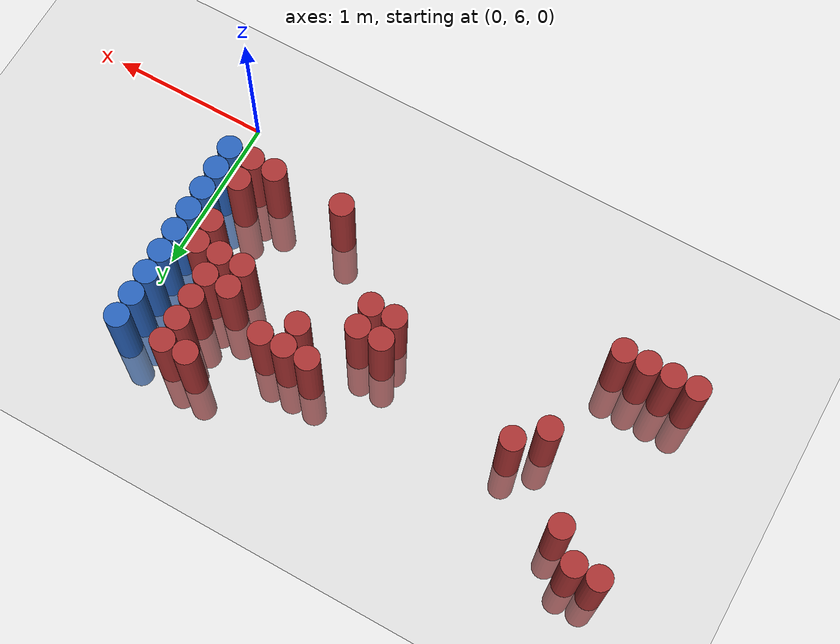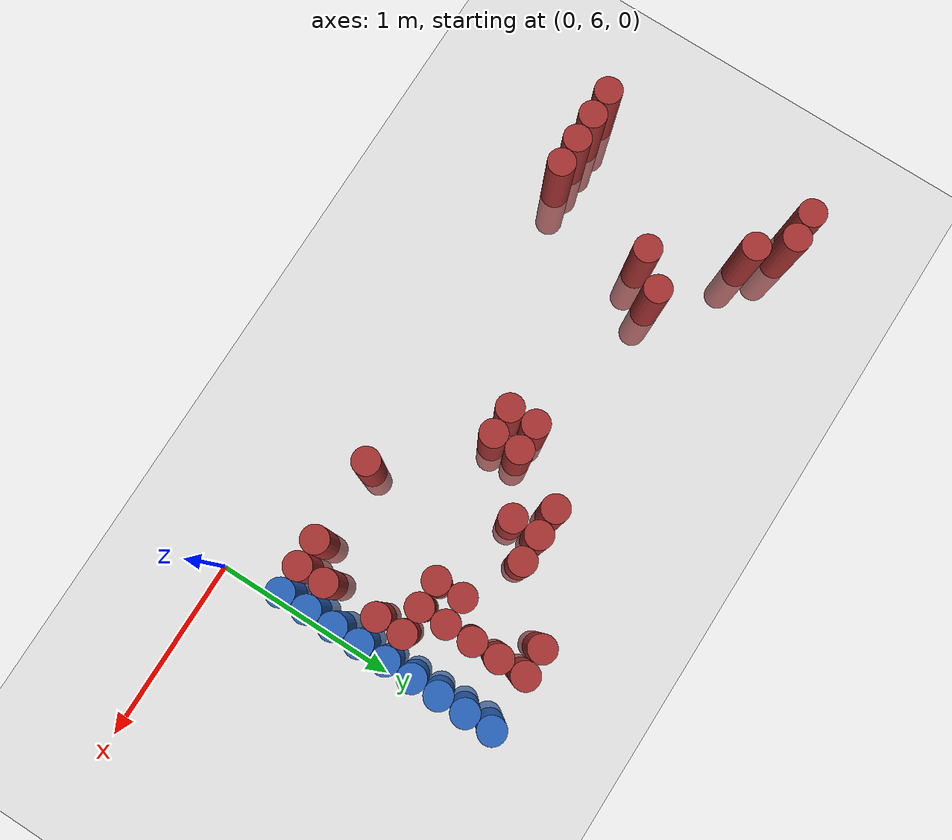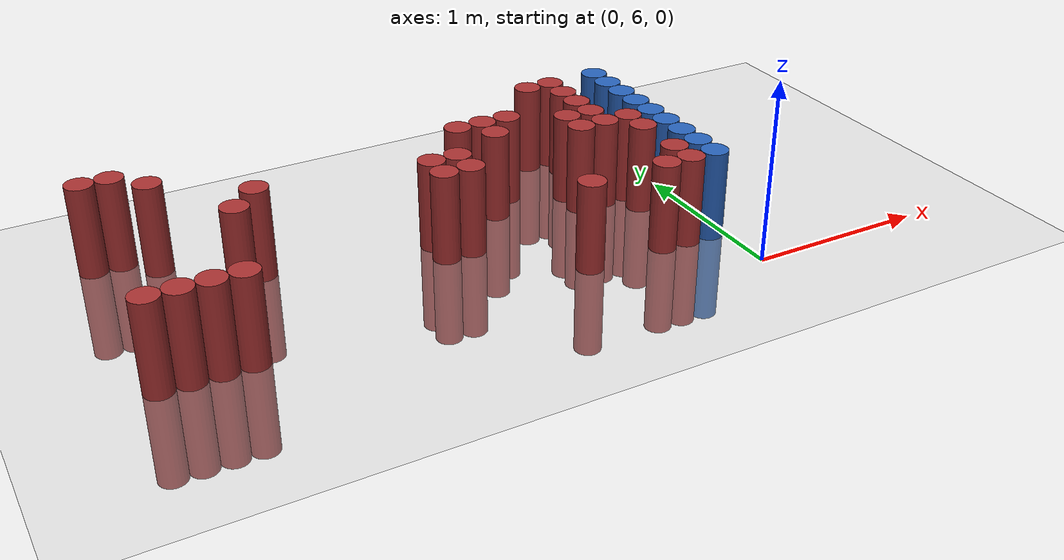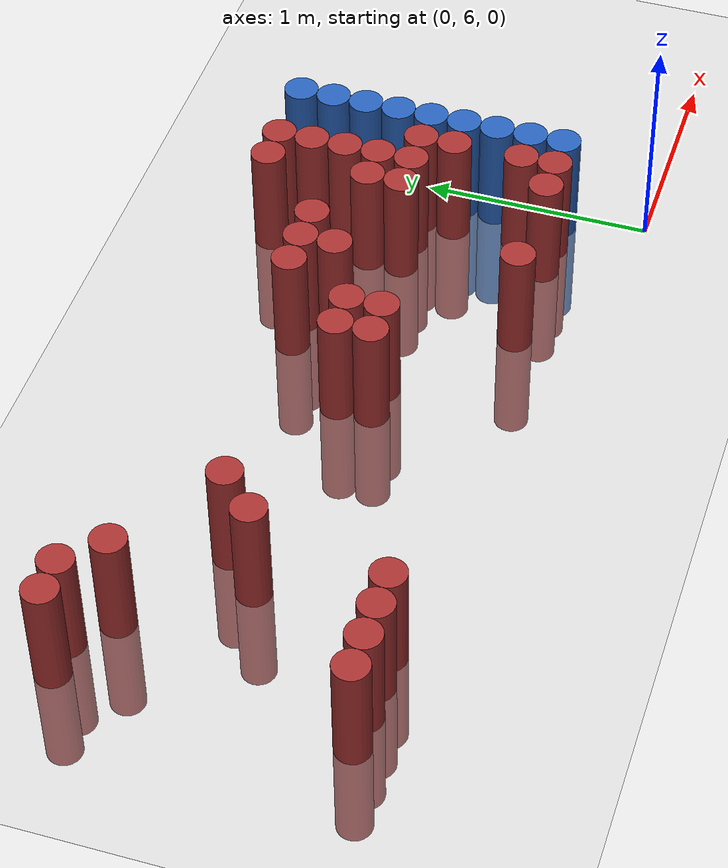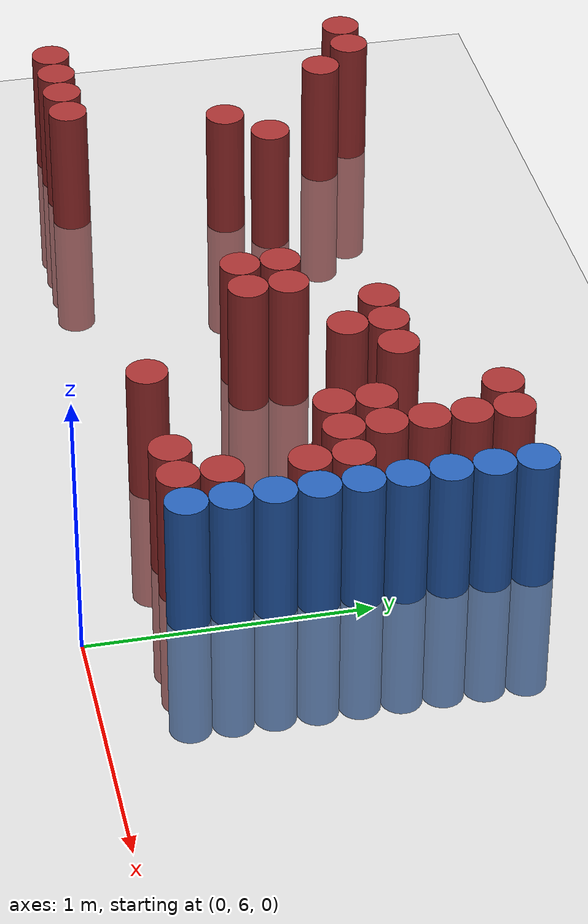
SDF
<sdf version="1.6">
 <world name="default">
  <model name="ground_plane">
   <static>1</static>
   <link name="link">
    <collision name="collision">
     <geometry><plane><normal>0 0 1</normal><size>100 100</size></plane></geometry>
     <surface><friction><ode><mu>100</mu><mu2>50</mu2></ode></friction></surface>
    </collision>
    <visual name="visual">
     <cast_shadows>0</cast_shadows>
     <geometry><plane><normal>0 0 1</normal><size>100 100</size></plane></geometry>
     <material>
      <script><uri>file://media/materials/scripts/gazebo.material</uri><name>Gazebo/Grey</name></script>
     </material>
    </visual>
   </link>
  </model>
  <model name="unit_cylinder_198">
   <static>1</static>
   <pose>-3.075000 6.375000 0.000000 0.000000 0.000000 0.000000</pose>
   <link name="link">
    <inertial>
     <mass>1</mass>
     <inertia><ixx>0.145833</ixx><ixy>0</ixy><ixz>0</ixz><iyy>0.145833</iyy><iyz>0</iyz><izz>0.125</izz></inertia>
    </inertial>
    <collision name="collision">
     <geometry><cylinder><radius>0.075000</radius><length>1</length></cylinder></geometry>
    </collision>
    <visual name="visual">
     <geometry><cylinder><radius>0.075000</radius><length>1</length></cylinder></geometry>
     <material>
      <ambient>0.648000 0.192000 0.192000 1</ambient>
      <diffuse>0.648000 0.192000 0.192000 1</diffuse>
     </material>
     <material>
      <script><name>Gazebo/Grey</name><uri>file://media/materials/scripts/gazebo.material</uri></script>
     </material>
    </visual>
    <sensor name="sensor_contact" type="contact"><contact><collision>collision</collision></contact></sensor>
   </link>
   <plugin filename="gz-sim-touchplugin-system" name="gz::sim::systems::TouchPlugin">
    <target>robot</target>
    <namespace>robot</namespace>
    <time>0.001</time>
    <enabled>true</enabled>
   </plugin>
  </model>
  <model name="unit_cylinder_199">
   <static>1</static>
   <pose>-3.075000 7.575000 0.000000 0.000000 0.000000 0.000000</pose>
   <link name="link">
    <inertial>
     <mass>1</mass>
     <inertia><ixx>0.145833</ixx><ixy>0</ixy><ixz>0</ixz><iyy>0.145833</iyy><iyz>0</iyz><izz>0.125</izz></inertia>
    </inertial>
    <collision name="collision">
     <geometry><cylinder><radius>0.075000</radius><length>1</length></cylinder></geometry>
    </collision>
    <visual name="visual">
     <geometry><cylinder><radius>0.075000</radius><length>1</length></cylinder></geometry>
     <material>
      <ambient>0.648000 0.192000 0.192000 1</ambient>
      <diffuse>0.648000 0.192000 0.192000 1</diffuse>
     </material>
     <material>
      <script><name>Gazebo/Grey</name><uri>file://media/materials/scripts/gazebo.material</uri></script>
     </material>
    </visual>
    <sensor name="sensor_contact" type="contact"><contact><collision>collision</collision></contact></sensor>
   </link>
   <plugin filename="gz-sim-touchplugin-system" name="gz::sim::systems::TouchPlugin">
    <target>robot</target>
    <namespace>robot</namespace>
    <time>0.001</time>
    <enabled>true</enabled>
   </plugin>
  </model>
  <model name="unit_cylinder_206">
   <static>1</static>
   <pose>-2.925000 6.375000 0.000000 0.000000 0.000000 0.000000</pose>
   <link name="link">
    <inertial>
     <mass>1</mass>
     <inertia><ixx>0.145833</ixx><ixy>0</ixy><ixz>0</ixz><iyy>0.145833</iyy><iyz>0</iyz><izz>0.125</izz></inertia>
    </inertial>
    <collision name="collision">
     <geometry><cylinder><radius>0.075000</radius><length>1</length></cylinder></geometry>
    </collision>
    <visual name="visual">
     <geometry><cylinder><radius>0.075000</radius><length>1</length></cylinder></geometry>
     <material>
      <ambient>0.648000 0.192000 0.192000 1</ambient>
      <diffuse>0.648000 0.192000 0.192000 1</diffuse>
     </material>
     <material>
      <script><name>Gazebo/Grey</name><uri>file://media/materials/scripts/gazebo.material</uri></script>
     </material>
    </visual>
    <sensor name="sensor_contact" type="contact"><contact><collision>collision</collision></contact></sensor>
   </link>
   <plugin filename="gz-sim-touchplugin-system" name="gz::sim::systems::TouchPlugin">
    <target>robot</target>
    <namespace>robot</namespace>
    <time>0.001</time>
    <enabled>true</enabled>
   </plugin>
  </model>
  <model name="unit_cylinder_207">
   <static>1</static>
   <pose>-2.925000 7.575000 0.000000 0.000000 0.000000 0.000000</pose>
   <link name="link">
    <inertial>
     <mass>1</mass>
     <inertia><ixx>0.145833</ixx><ixy>0</ixy><ixz>0</ixz><iyy>0.145833</iyy><iyz>0</iyz><izz>0.125</izz></inertia>
    </inertial>
    <collision name="collision">
     <geometry><cylinder><radius>0.075000</radius><length>1</length></cylinder></geometry>
    </collision>
    <visual name="visual">
     <geometry><cylinder><radius>0.075000</radius><length>1</length></cylinder></geometry>
     <material>
      <ambient>0.648000 0.192000 0.192000 1</ambient>
      <diffuse>0.648000 0.192000 0.192000 1</diffuse>
     </material>
     <material>
      <script><name>Gazebo/Grey</name><uri>file://media/materials/scripts/gazebo.material</uri></script>
     </material>
    </visual>
    <sensor name="sensor_contact" type="contact"><contact><collision>collision</collision></contact></sensor>
   </link>
   <plugin filename="gz-sim-touchplugin-system" name="gz::sim::systems::TouchPlugin">
    <target>robot</target>
    <namespace>robot</namespace>
    <time>0.001</time>
    <enabled>true</enabled>
   </plugin>
  </model>
  <model name="unit_cylinder_217">
   <static>1</static>
   <pose>-2.775000 6.375000 0.000000 0.000000 0.000000 0.000000</pose>
   <link name="link">
    <inertial>
     <mass>1</mass>
     <inertia><ixx>0.145833</ixx><ixy>0</ixy><ixz>0</ixz><iyy>0.145833</iyy><iyz>0</iyz><izz>0.125</izz></inertia>
    </inertial>
    <collision name="collision">
     <geometry><cylinder><radius>0.075000</radius><length>1</length></cylinder></geometry>
    </collision>
    <visual name="visual">
     <geometry><cylinder><radius>0.075000</radius><length>1</length></cylinder></geometry>
     <material>
      <ambient>0.648000 0.192000 0.192000 1</ambient>
      <diffuse>0.648000 0.192000 0.192000 1</diffuse>
     </material>
     <material>
      <script><name>Gazebo/Grey</name><uri>file://media/materials/scripts/gazebo.material</uri></script>
     </material>
    </visual>
    <sensor name="sensor_contact" type="contact"><contact><collision>collision</collision></contact></sensor>
   </link>
   <plugin filename="gz-sim-touchplugin-system" name="gz::sim::systems::TouchPlugin">
    <target>robot</target>
    <namespace>robot</namespace>
    <time>0.001</time>
    <enabled>true</enabled>
   </plugin>
  </model>
  <model name="unit_cylinder_218">
   <static>1</static>
   <pose>-2.775000 7.425000 0.000000 0.000000 0.000000 0.000000</pose>
   <link name="link">
    <inertial>
     <mass>1</mass>
     <inertia><ixx>0.145833</ixx><ixy>0</ixy><ixz>0</ixz><iyy>0.145833</iyy><iyz>0</iyz><izz>0.125</izz></inertia>
    </inertial>
    <collision name="collision">
     <geometry><cylinder><radius>0.075000</radius><length>1</length></cylinder></geometry>
    </collision>
    <visual name="visual">
     <geometry><cylinder><radius>0.075000</radius><length>1</length></cylinder></geometry>
     <material>
      <ambient>0.648000 0.192000 0.192000 1</ambient>
      <diffuse>0.648000 0.192000 0.192000 1</diffuse>
     </material>
     <material>
      <script><name>Gazebo/Grey</name><uri>file://media/materials/scripts/gazebo.material</uri></script>
     </material>
    </visual>
    <sensor name="sensor_contact" type="contact"><contact><collision>collision</collision></contact></sensor>
   </link>
   <plugin filename="gz-sim-touchplugin-system" name="gz::sim::systems::TouchPlugin">
    <target>robot</target>
    <namespace>robot</namespace>
    <time>0.001</time>
    <enabled>true</enabled>
   </plugin>
  </model>
  <model name="unit_cylinder_228">
   <static>1</static>
   <pose>-2.625000 6.375000 0.000000 0.000000 0.000000 0.000000</pose>
   <link name="link">
    <inertial>
     <mass>1</mass>
     <inertia><ixx>0.145833</ixx><ixy>0</ixy><ixz>0</ixz><iyy>0.145833</iyy><iyz>0</iyz><izz>0.125</izz></inertia>
    </inertial>
    <collision name="collision">
     <geometry><cylinder><radius>0.075000</radius><length>1</length></cylinder></geometry>
    </collision>
    <visual name="visual">
     <geometry><cylinder><radius>0.075000</radius><length>1</length></cylinder></geometry>
     <material>
      <ambient>0.648000 0.192000 0.192000 1</ambient>
      <diffuse>0.648000 0.192000 0.192000 1</diffuse>
     </material>
     <material>
      <script><name>Gazebo/Grey</name><uri>file://media/materials/scripts/gazebo.material</uri></script>
     </material>
    </visual>
    <sensor name="sensor_contact" type="contact"><contact><collision>collision</collision></contact></sensor>
   </link>
   <plugin filename="gz-sim-touchplugin-system" name="gz::sim::systems::TouchPlugin">
    <target>robot</target>
    <namespace>robot</namespace>
    <time>0.001</time>
    <enabled>true</enabled>
   </plugin>
  </model>
  <model name="unit_cylinder_235">
   <static>1</static>
   <pose>-2.475000 6.975000 0.000000 0.000000 0.000000 0.000000</pose>
   <link name="link">
    <inertial>
     <mass>1</mass>
     <inertia><ixx>0.145833</ixx><ixy>0</ixy><ixz>0</ixz><iyy>0.145833</iyy><iyz>0</iyz><izz>0.125</izz></inertia>
    </inertial>
    <collision name="collision">
     <geometry><cylinder><radius>0.075000</radius><length>1</length></cylinder></geometry>
    </collision>
    <visual name="visual">
     <geometry><cylinder><radius>0.075000</radius><length>1</length></cylinder></geometry>
     <material>
      <ambient>0.648000 0.192000 0.192000 1</ambient>
      <diffuse>0.648000 0.192000 0.192000 1</diffuse>
     </material>
     <material>
      <script><name>Gazebo/Grey</name><uri>file://media/materials/scripts/gazebo.material</uri></script>
     </material>
    </visual>
    <sensor name="sensor_contact" type="contact"><contact><collision>collision</collision></contact></sensor>
   </link>
   <plugin filename="gz-sim-touchplugin-system" name="gz::sim::systems::TouchPlugin">
    <target>robot</target>
    <namespace>robot</namespace>
    <time>0.001</time>
    <enabled>true</enabled>
   </plugin>
  </model>
  <model name="unit_cylinder_241">
   <static>1</static>
   <pose>-2.325000 7.125000 0.000000 0.000000 0.000000 0.000000</pose>
   <link name="link">
    <inertial>
     <mass>1</mass>
     <inertia><ixx>0.145833</ixx><ixy>0</ixy><ixz>0</ixz><iyy>0.145833</iyy><iyz>0</iyz><izz>0.125</izz></inertia>
    </inertial>
    <collision name="collision">
     <geometry><cylinder><radius>0.075000</radius><length>1</length></cylinder></geometry>
    </collision>
    <visual name="visual">
     <geometry><cylinder><radius>0.075000</radius><length>1</length></cylinder></geometry>
     <material>
      <ambient>0.648000 0.192000 0.192000 1</ambient>
      <diffuse>0.648000 0.192000 0.192000 1</diffuse>
     </material>
     <material>
      <script><name>Gazebo/Grey</name><uri>file://media/materials/scripts/gazebo.material</uri></script>
     </material>
    </visual>
    <sensor name="sensor_contact" type="contact"><contact><collision>collision</collision></contact></sensor>
   </link>
   <plugin filename="gz-sim-touchplugin-system" name="gz::sim::systems::TouchPlugin">
    <target>robot</target>
    <namespace>robot</namespace>
    <time>0.001</time>
    <enabled>true</enabled>
   </plugin>
  </model>
  <model name="unit_cylinder_243">
   <static>1</static>
   <pose>-1.425000 6.825000 0.000000 0.000000 0.000000 0.000000</pose>
   <link name="link">
    <inertial>
     <mass>1</mass>
     <inertia><ixx>0.145833</ixx><ixy>0</ixy><ixz>0</ixz><iyy>0.145833</iyy><iyz>0</iyz><izz>0.125</izz></inertia>
    </inertial>
    <collision name="collision">
     <geometry><cylinder><radius>0.075000</radius><length>1</length></cylinder></geometry>
    </collision>
    <visual name="visual">
     <geometry><cylinder><radius>0.075000</radius><length>1</length></cylinder></geometry>
     <material>
      <ambient>0.648000 0.192000 0.192000 1</ambient>
      <diffuse>0.648000 0.192000 0.192000 1</diffuse>
     </material>
     <material>
      <script><name>Gazebo/Grey</name><uri>file://media/materials/scripts/gazebo.material</uri></script>
     </material>
    </visual>
    <sensor name="sensor_contact" type="contact"><contact><collision>collision</collision></contact></sensor>
   </link>
   <plugin filename="gz-sim-touchplugin-system" name="gz::sim::systems::TouchPlugin">
    <target>robot</target>
    <namespace>robot</namespace>
    <time>0.001</time>
    <enabled>true</enabled>
   </plugin>
  </model>
  <model name="unit_cylinder_244">
   <static>1</static>
   <pose>-1.425000 6.975000 0.000000 0.000000 0.000000 0.000000</pose>
   <link name="link">
    <inertial>
     <mass>1</mass>
     <inertia><ixx>0.145833</ixx><ixy>0</ixy><ixz>0</ixz><iyy>0.145833</iyy><iyz>0</iyz><izz>0.125</izz></inertia>
    </inertial>
    <collision name="collision">
     <geometry><cylinder><radius>0.075000</radius><length>1</length></cylinder></geometry>
    </collision>
    <visual name="visual">
     <geometry><cylinder><radius>0.075000</radius><length>1</length></cylinder></geometry>
     <material>
      <ambient>0.648000 0.192000 0.192000 1</ambient>
      <diffuse>0.648000 0.192000 0.192000 1</diffuse>
     </material>
     <material>
      <script><name>Gazebo/Grey</name><uri>file://media/materials/scripts/gazebo.material</uri></script>
     </material>
    </visual>
    <sensor name="sensor_contact" type="contact"><contact><collision>collision</collision></contact></sensor>
   </link>
   <plugin filename="gz-sim-touchplugin-system" name="gz::sim::systems::TouchPlugin">
    <target>robot</target>
    <namespace>robot</namespace>
    <time>0.001</time>
    <enabled>true</enabled>
   </plugin>
  </model>
  <model name="unit_cylinder_250">
   <static>1</static>
   <pose>-1.275000 6.825000 0.000000 0.000000 0.000000 0.000000</pose>
   <link name="link">
    <inertial>
     <mass>1</mass>
     <inertia><ixx>0.145833</ixx><ixy>0</ixy><ixz>0</ixz><iyy>0.145833</iyy><iyz>0</iyz><izz>0.125</izz></inertia>
    </inertial>
    <collision name="collision">
     <geometry><cylinder><radius>0.075000</radius><length>1</length></cylinder></geometry>
    </collision>
    <visual name="visual">
     <geometry><cylinder><radius>0.075000</radius><length>1</length></cylinder></geometry>
     <material>
      <ambient>0.648000 0.192000 0.192000 1</ambient>
      <diffuse>0.648000 0.192000 0.192000 1</diffuse>
     </material>
     <material>
      <script><name>Gazebo/Grey</name><uri>file://media/materials/scripts/gazebo.material</uri></script>
     </material>
    </visual>
    <sensor name="sensor_contact" type="contact"><contact><collision>collision</collision></contact></sensor>
   </link>
   <plugin filename="gz-sim-touchplugin-system" name="gz::sim::systems::TouchPlugin">
    <target>robot</target>
    <namespace>robot</namespace>
    <time>0.001</time>
    <enabled>true</enabled>
   </plugin>
  </model>
  <model name="unit_cylinder_251">
   <static>1</static>
   <pose>-1.275000 6.975000 0.000000 0.000000 0.000000 0.000000</pose>
   <link name="link">
    <inertial>
     <mass>1</mass>
     <inertia><ixx>0.145833</ixx><ixy>0</ixy><ixz>0</ixz><iyy>0.145833</iyy><iyz>0</iyz><izz>0.125</izz></inertia>
    </inertial>
    <collision name="collision">
     <geometry><cylinder><radius>0.075000</radius><length>1</length></cylinder></geometry>
    </collision>
    <visual name="visual">
     <geometry><cylinder><radius>0.075000</radius><length>1</length></cylinder></geometry>
     <material>
      <ambient>0.648000 0.192000 0.192000 1</ambient>
      <diffuse>0.648000 0.192000 0.192000 1</diffuse>
     </material>
     <material>
      <script><name>Gazebo/Grey</name><uri>file://media/materials/scripts/gazebo.material</uri></script>
     </material>
    </visual>
    <sensor name="sensor_contact" type="contact"><contact><collision>collision</collision></contact></sensor>
   </link>
   <plugin filename="gz-sim-touchplugin-system" name="gz::sim::systems::TouchPlugin">
    <target>robot</target>
    <namespace>robot</namespace>
    <time>0.001</time>
    <enabled>true</enabled>
   </plugin>
  </model>
  <model name="unit_cylinder_262">
   <static>1</static>
   <pose>-1.125000 7.275000 0.000000 0.000000 0.000000 0.000000</pose>
   <link name="link">
    <inertial>
     <mass>1</mass>
     <inertia><ixx>0.145833</ixx><ixy>0</ixy><ixz>0</ixz><iyy>0.145833</iyy><iyz>0</iyz><izz>0.125</izz></inertia>
    </inertial>
    <collision name="collision">
     <geometry><cylinder><radius>0.075000</radius><length>1</length></cylinder></geometry>
    </collision>
    <visual name="visual">
     <geometry><cylinder><radius>0.075000</radius><length>1</length></cylinder></geometry>
     <material>
      <ambient>0.648000 0.192000 0.192000 1</ambient>
      <diffuse>0.648000 0.192000 0.192000 1</diffuse>
     </material>
     <material>
      <script><name>Gazebo/Grey</name><uri>file://media/materials/scripts/gazebo.material</uri></script>
     </material>
    </visual>
    <sensor name="sensor_contact" type="contact"><contact><collision>collision</collision></contact></sensor>
   </link>
   <plugin filename="gz-sim-touchplugin-system" name="gz::sim::systems::TouchPlugin">
    <target>robot</target>
    <namespace>robot</namespace>
    <time>0.001</time>
    <enabled>true</enabled>
   </plugin>
  </model>
  <model name="unit_cylinder_273">
   <static>1</static>
   <pose>-0.975000 7.125000 0.000000 0.000000 0.000000 0.000000</pose>
   <link name="link">
    <inertial>
     <mass>1</mass>
     <inertia><ixx>0.145833</ixx><ixy>0</ixy><ixz>0</ixz><iyy>0.145833</iyy><iyz>0</iyz><izz>0.125</izz></inertia>
    </inertial>
    <collision name="collision">
     <geometry><cylinder><radius>0.075000</radius><length>1</length></cylinder></geometry>
    </collision>
    <visual name="visual">
     <geometry><cylinder><radius>0.075000</radius><length>1</length></cylinder></geometry>
     <material>
      <ambient>0.648000 0.192000 0.192000 1</ambient>
      <diffuse>0.648000 0.192000 0.192000 1</diffuse>
     </material>
     <material>
      <script><name>Gazebo/Grey</name><uri>file://media/materials/scripts/gazebo.material</uri></script>
     </material>
    </visual>
    <sensor name="sensor_contact" type="contact"><contact><collision>collision</collision></contact></sensor>
   </link>
   <plugin filename="gz-sim-touchplugin-system" name="gz::sim::systems::TouchPlugin">
    <target>robot</target>
    <namespace>robot</namespace>
    <time>0.001</time>
    <enabled>true</enabled>
   </plugin>
  </model>
  <model name="unit_cylinder_274">
   <static>1</static>
   <pose>-0.975000 7.275000 0.000000 0.000000 0.000000 0.000000</pose>
   <link name="link">
    <inertial>
     <mass>1</mass>
     <inertia><ixx>0.145833</ixx><ixy>0</ixy><ixz>0</ixz><iyy>0.145833</iyy><iyz>0</iyz><izz>0.125</izz></inertia>
    </inertial>
    <collision name="collision">
     <geometry><cylinder><radius>0.075000</radius><length>1</length></cylinder></geometry>
    </collision>
    <visual name="visual">
     <geometry><cylinder><radius>0.075000</radius><length>1</length></cylinder></geometry>
     <material>
      <ambient>0.648000 0.192000 0.192000 1</ambient>
      <diffuse>0.648000 0.192000 0.192000 1</diffuse>
     </material>
     <material>
      <script><name>Gazebo/Grey</name><uri>file://media/materials/scripts/gazebo.material</uri></script>
     </material>
    </visual>
    <sensor name="sensor_contact" type="contact"><contact><collision>collision</collision></contact></sensor>
   </link>
   <plugin filename="gz-sim-touchplugin-system" name="gz::sim::systems::TouchPlugin">
    <target>robot</target>
    <namespace>robot</namespace>
    <time>0.001</time>
    <enabled>true</enabled>
   </plugin>
  </model>
  <model name="unit_cylinder_282">
   <static>1</static>
   <pose>-0.825000 6.375000 0.000000 0.000000 0.000000 0.000000</pose>
   <link name="link">
    <inertial>
     <mass>1</mass>
     <inertia><ixx>0.145833</ixx><ixy>0</ixy><ixz>0</ixz><iyy>0.145833</iyy><iyz>0</iyz><izz>0.125</izz></inertia>
    </inertial>
    <collision name="collision">
     <geometry><cylinder><radius>0.075000</radius><length>1</length></cylinder></geometry>
    </collision>
    <visual name="visual">
     <geometry><cylinder><radius>0.075000</radius><length>1</length></cylinder></geometry>
     <material>
      <ambient>0.648000 0.192000 0.192000 1</ambient>
      <diffuse>0.648000 0.192000 0.192000 1</diffuse>
     </material>
     <material>
      <script><name>Gazebo/Grey</name><uri>file://media/materials/scripts/gazebo.material</uri></script>
     </material>
    </visual>
    <sensor name="sensor_contact" type="contact"><contact><collision>collision</collision></contact></sensor>
   </link>
   <plugin filename="gz-sim-touchplugin-system" name="gz::sim::systems::TouchPlugin">
    <target>robot</target>
    <namespace>robot</namespace>
    <time>0.001</time>
    <enabled>true</enabled>
   </plugin>
  </model>
  <model name="unit_cylinder_283">
   <static>1</static>
   <pose>-0.825000 7.275000 0.000000 0.000000 0.000000 0.000000</pose>
   <link name="link">
    <inertial>
     <mass>1</mass>
     <inertia><ixx>0.145833</ixx><ixy>0</ixy><ixz>0</ixz><iyy>0.145833</iyy><iyz>0</iyz><izz>0.125</izz></inertia>
    </inertial>
    <collision name="collision">
     <geometry><cylinder><radius>0.075000</radius><length>1</length></cylinder></geometry>
    </collision>
    <visual name="visual">
     <geometry><cylinder><radius>0.075000</radius><length>1</length></cylinder></geometry>
     <material>
      <ambient>0.648000 0.192000 0.192000 1</ambient>
      <diffuse>0.648000 0.192000 0.192000 1</diffuse>
     </material>
     <material>
      <script><name>Gazebo/Grey</name><uri>file://media/materials/scripts/gazebo.material</uri></script>
     </material>
    </visual>
    <sensor name="sensor_contact" type="contact"><contact><collision>collision</collision></contact></sensor>
   </link>
   <plugin filename="gz-sim-touchplugin-system" name="gz::sim::systems::TouchPlugin">
    <target>robot</target>
    <namespace>robot</namespace>
    <time>0.001</time>
    <enabled>true</enabled>
   </plugin>
  </model>
  <model name="unit_cylinder_293">
   <static>1</static>
   <pose>-0.525000 6.975000 0.000000 0.000000 0.000000 0.000000</pose>
   <link name="link">
    <inertial>
     <mass>1</mass>
     <inertia><ixx>0.145833</ixx><ixy>0</ixy><ixz>0</ixz><iyy>0.145833</iyy><iyz>0</iyz><izz>0.125</izz></inertia>
    </inertial>
    <collision name="collision">
     <geometry><cylinder><radius>0.075000</radius><length>1</length></cylinder></geometry>
    </collision>
    <visual name="visual">
     <geometry><cylinder><radius>0.075000</radius><length>1</length></cylinder></geometry>
     <material>
      <ambient>0.648000 0.192000 0.192000 1</ambient>
      <diffuse>0.648000 0.192000 0.192000 1</diffuse>
     </material>
     <material>
      <script><name>Gazebo/Grey</name><uri>file://media/materials/scripts/gazebo.material</uri></script>
     </material>
    </visual>
    <sensor name="sensor_contact" type="contact"><contact><collision>collision</collision></contact></sensor>
   </link>
   <plugin filename="gz-sim-touchplugin-system" name="gz::sim::systems::TouchPlugin">
    <target>robot</target>
    <namespace>robot</namespace>
    <time>0.001</time>
    <enabled>true</enabled>
   </plugin>
  </model>
  <model name="unit_cylinder_294">
   <static>1</static>
   <pose>-0.525000 7.125000 0.000000 0.000000 0.000000 0.000000</pose>
   <link name="link">
    <inertial>
     <mass>1</mass>
     <inertia><ixx>0.145833</ixx><ixy>0</ixy><ixz>0</ixz><iyy>0.145833</iyy><iyz>0</iyz><izz>0.125</izz></inertia>
    </inertial>
    <collision name="collision">
     <geometry><cylinder><radius>0.075000</radius><length>1</length></cylinder></geometry>
    </collision>
    <visual name="visual">
     <geometry><cylinder><radius>0.075000</radius><length>1</length></cylinder></geometry>
     <material>
      <ambient>0.648000 0.192000 0.192000 1</ambient>
      <diffuse>0.648000 0.192000 0.192000 1</diffuse>
     </material>
     <material>
      <script><name>Gazebo/Grey</name><uri>file://media/materials/scripts/gazebo.material</uri></script>
     </material>
    </visual>
    <sensor name="sensor_contact" type="contact"><contact><collision>collision</collision></contact></sensor>
   </link>
   <plugin filename="gz-sim-touchplugin-system" name="gz::sim::systems::TouchPlugin">
    <target>robot</target>
    <namespace>robot</namespace>
    <time>0.001</time>
    <enabled>true</enabled>
   </plugin>
  </model>
  <model name="unit_cylinder_295">
   <static>1</static>
   <pose>-0.525000 7.575000 0.000000 0.000000 0.000000 0.000000</pose>
   <link name="link">
    <inertial>
     <mass>1</mass>
     <inertia><ixx>0.145833</ixx><ixy>0</ixy><ixz>0</ixz><iyy>0.145833</iyy><iyz>0</iyz><izz>0.125</izz></inertia>
    </inertial>
    <collision name="collision">
     <geometry><cylinder><radius>0.075000</radius><length>1</length></cylinder></geometry>
    </collision>
    <visual name="visual">
     <geometry><cylinder><radius>0.075000</radius><length>1</length></cylinder></geometry>
     <material>
      <ambient>0.648000 0.192000 0.192000 1</ambient>
      <diffuse>0.648000 0.192000 0.192000 1</diffuse>
     </material>
     <material>
      <script><name>Gazebo/Grey</name><uri>file://media/materials/scripts/gazebo.material</uri></script>
     </material>
    </visual>
    <sensor name="sensor_contact" type="contact"><contact><collision>collision</collision></contact></sensor>
   </link>
   <plugin filename="gz-sim-touchplugin-system" name="gz::sim::systems::TouchPlugin">
    <target>robot</target>
    <namespace>robot</namespace>
    <time>0.001</time>
    <enabled>true</enabled>
   </plugin>
  </model>
  <model name="unit_cylinder_301">
   <static>1</static>
   <pose>-0.375000 6.375000 0.000000 0.000000 0.000000 0.000000</pose>
   <link name="link">
    <inertial>
     <mass>1</mass>
     <inertia><ixx>0.145833</ixx><ixy>0</ixy><ixz>0</ixz><iyy>0.145833</iyy><iyz>0</iyz><izz>0.125</izz></inertia>
    </inertial>
    <collision name="collision">
     <geometry><cylinder><radius>0.075000</radius><length>1</length></cylinder></geometry>
    </collision>
    <visual name="visual">
     <geometry><cylinder><radius>0.075000</radius><length>1</length></cylinder></geometry>
     <material>
      <ambient>0.648000 0.192000 0.192000 1</ambient>
      <diffuse>0.648000 0.192000 0.192000 1</diffuse>
     </material>
     <material>
      <script><name>Gazebo/Grey</name><uri>file://media/materials/scripts/gazebo.material</uri></script>
     </material>
    </visual>
    <sensor name="sensor_contact" type="contact"><contact><collision>collision</collision></contact></sensor>
   </link>
   <plugin filename="gz-sim-touchplugin-system" name="gz::sim::systems::TouchPlugin">
    <target>robot</target>
    <namespace>robot</namespace>
    <time>0.001</time>
    <enabled>true</enabled>
   </plugin>
  </model>
  <model name="unit_cylinder_302">
   <static>1</static>
   <pose>-0.375000 6.975000 0.000000 0.000000 0.000000 0.000000</pose>
   <link name="link">
    <inertial>
     <mass>1</mass>
     <inertia><ixx>0.145833</ixx><ixy>0</ixy><ixz>0</ixz><iyy>0.145833</iyy><iyz>0</iyz><izz>0.125</izz></inertia>
    </inertial>
    <collision name="collision">
     <geometry><cylinder><radius>0.075000</radius><length>1</length></cylinder></geometry>
    </collision>
    <visual name="visual">
     <geometry><cylinder><radius>0.075000</radius><length>1</length></cylinder></geometry>
     <material>
      <ambient>0.648000 0.192000 0.192000 1</ambient>
      <diffuse>0.648000 0.192000 0.192000 1</diffuse>
     </material>
     <material>
      <script><name>Gazebo/Grey</name><uri>file://media/materials/scripts/gazebo.material</uri></script>
     </material>
    </visual>
    <sensor name="sensor_contact" type="contact"><contact><collision>collision</collision></contact></sensor>
   </link>
   <plugin filename="gz-sim-touchplugin-system" name="gz::sim::systems::TouchPlugin">
    <target>robot</target>
    <namespace>robot</namespace>
    <time>0.001</time>
    <enabled>true</enabled>
   </plugin>
  </model>
  <model name="unit_cylinder_303">
   <static>1</static>
   <pose>-0.375000 7.125000 0.000000 0.000000 0.000000 0.000000</pose>
   <link name="link">
    <inertial>
     <mass>1</mass>
     <inertia><ixx>0.145833</ixx><ixy>0</ixy><ixz>0</ixz><iyy>0.145833</iyy><iyz>0</iyz><izz>0.125</izz></inertia>
    </inertial>
    <collision name="collision">
     <geometry><cylinder><radius>0.075000</radius><length>1</length></cylinder></geometry>
    </collision>
    <visual name="visual">
     <geometry><cylinder><radius>0.075000</radius><length>1</length></cylinder></geometry>
     <material>
      <ambient>0.648000 0.192000 0.192000 1</ambient>
      <diffuse>0.648000 0.192000 0.192000 1</diffuse>
     </material>
     <material>
      <script><name>Gazebo/Grey</name><uri>file://media/materials/scripts/gazebo.material</uri></script>
     </material>
    </visual>
    <sensor name="sensor_contact" type="contact"><contact><collision>collision</collision></contact></sensor>
   </link>
   <plugin filename="gz-sim-touchplugin-system" name="gz::sim::systems::TouchPlugin">
    <target>robot</target>
    <namespace>robot</namespace>
    <time>0.001</time>
    <enabled>true</enabled>
   </plugin>
  </model>
  <model name="unit_cylinder_304">
   <static>1</static>
   <pose>-0.375000 7.275000 0.000000 0.000000 0.000000 0.000000</pose>
   <link name="link">
    <inertial>
     <mass>1</mass>
     <inertia><ixx>0.145833</ixx><ixy>0</ixy><ixz>0</ixz><iyy>0.145833</iyy><iyz>0</iyz><izz>0.125</izz></inertia>
    </inertial>
    <collision name="collision">
     <geometry><cylinder><radius>0.075000</radius><length>1</length></cylinder></geometry>
    </collision>
    <visual name="visual">
     <geometry><cylinder><radius>0.075000</radius><length>1</length></cylinder></geometry>
     <material>
      <ambient>0.648000 0.192000 0.192000 1</ambient>
      <diffuse>0.648000 0.192000 0.192000 1</diffuse>
     </material>
     <material>
      <script><name>Gazebo/Grey</name><uri>file://media/materials/scripts/gazebo.material</uri></script>
     </material>
    </visual>
    <sensor name="sensor_contact" type="contact"><contact><collision>collision</collision></contact></sensor>
   </link>
   <plugin filename="gz-sim-touchplugin-system" name="gz::sim::systems::TouchPlugin">
    <target>robot</target>
    <namespace>robot</namespace>
    <time>0.001</time>
    <enabled>true</enabled>
   </plugin>
  </model>
  <model name="unit_cylinder_305">
   <static>1</static>
   <pose>-0.375000 7.425000 0.000000 0.000000 0.000000 0.000000</pose>
   <link name="link">
    <inertial>
     <mass>1</mass>
     <inertia><ixx>0.145833</ixx><ixy>0</ixy><ixz>0</ixz><iyy>0.145833</iyy><iyz>0</iyz><izz>0.125</izz></inertia>
    </inertial>
    <collision name="collision">
     <geometry><cylinder><radius>0.075000</radius><length>1</length></cylinder></geometry>
    </collision>
    <visual name="visual">
     <geometry><cylinder><radius>0.075000</radius><length>1</length></cylinder></geometry>
     <material>
      <ambient>0.648000 0.192000 0.192000 1</ambient>
      <diffuse>0.648000 0.192000 0.192000 1</diffuse>
     </material>
     <material>
      <script><name>Gazebo/Grey</name><uri>file://media/materials/scripts/gazebo.material</uri></script>
     </material>
    </visual>
    <sensor name="sensor_contact" type="contact"><contact><collision>collision</collision></contact></sensor>
   </link>
   <plugin filename="gz-sim-touchplugin-system" name="gz::sim::systems::TouchPlugin">
    <target>robot</target>
    <namespace>robot</namespace>
    <time>0.001</time>
    <enabled>true</enabled>
   </plugin>
  </model>
  <model name="unit_cylinder_306">
   <static>1</static>
   <pose>-0.375000 7.575000 0.000000 0.000000 0.000000 0.000000</pose>
   <link name="link">
    <inertial>
     <mass>1</mass>
     <inertia><ixx>0.145833</ixx><ixy>0</ixy><ixz>0</ixz><iyy>0.145833</iyy><iyz>0</iyz><izz>0.125</izz></inertia>
    </inertial>
    <collision name="collision">
     <geometry><cylinder><radius>0.075000</radius><length>1</length></cylinder></geometry>
    </collision>
    <visual name="visual">
     <geometry><cylinder><radius>0.075000</radius><length>1</length></cylinder></geometry>
     <material>
      <ambient>0.648000 0.192000 0.192000 1</ambient>
      <diffuse>0.648000 0.192000 0.192000 1</diffuse>
     </material>
     <material>
      <script><name>Gazebo/Grey</name><uri>file://media/materials/scripts/gazebo.material</uri></script>
     </material>
    </visual>
    <sensor name="sensor_contact" type="contact"><contact><collision>collision</collision></contact></sensor>
   </link>
   <plugin filename="gz-sim-touchplugin-system" name="gz::sim::systems::TouchPlugin">
    <target>robot</target>
    <namespace>robot</namespace>
    <time>0.001</time>
    <enabled>true</enabled>
   </plugin>
  </model>
  <model name="unit_cylinder_319">
   <static>1</static>
   <pose>-0.225000 6.375000 0.000000 0.000000 0.000000 0.000000</pose>
   <link name="link">
    <inertial>
     <mass>1</mass>
     <inertia><ixx>0.145833</ixx><ixy>0</ixy><ixz>0</ixz><iyy>0.145833</iyy><iyz>0</iyz><izz>0.125</izz></inertia>
    </inertial>
    <collision name="collision">
     <geometry><cylinder><radius>0.075000</radius><length>1</length></cylinder></geometry>
    </collision>
    <visual name="visual">
     <geometry><cylinder><radius>0.075000</radius><length>1</length></cylinder></geometry>
     <material>
      <ambient>0.648000 0.192000 0.192000 1</ambient>
      <diffuse>0.648000 0.192000 0.192000 1</diffuse>
     </material>
     <material>
      <script><name>Gazebo/Grey</name><uri>file://media/materials/scripts/gazebo.material</uri></script>
     </material>
    </visual>
    <sensor name="sensor_contact" type="contact"><contact><collision>collision</collision></contact></sensor>
   </link>
   <plugin filename="gz-sim-touchplugin-system" name="gz::sim::systems::TouchPlugin">
    <target>robot</target>
    <namespace>robot</namespace>
    <time>0.001</time>
    <enabled>true</enabled>
   </plugin>
  </model>
  <model name="unit_cylinder_320">
   <static>1</static>
   <pose>-0.225000 6.525000 0.000000 0.000000 0.000000 0.000000</pose>
   <link name="link">
    <inertial>
     <mass>1</mass>
     <inertia><ixx>0.145833</ixx><ixy>0</ixy><ixz>0</ixz><iyy>0.145833</iyy><iyz>0</iyz><izz>0.125</izz></inertia>
    </inertial>
    <collision name="collision">
     <geometry><cylinder><radius>0.075000</radius><length>1</length></cylinder></geometry>
    </collision>
    <visual name="visual">
     <geometry><cylinder><radius>0.075000</radius><length>1</length></cylinder></geometry>
     <material>
      <ambient>0.648000 0.192000 0.192000 1</ambient>
      <diffuse>0.648000 0.192000 0.192000 1</diffuse>
     </material>
     <material>
      <script><name>Gazebo/Grey</name><uri>file://media/materials/scripts/gazebo.material</uri></script>
     </material>
    </visual>
    <sensor name="sensor_contact" type="contact"><contact><collision>collision</collision></contact></sensor>
   </link>
   <plugin filename="gz-sim-touchplugin-system" name="gz::sim::systems::TouchPlugin">
    <target>robot</target>
    <namespace>robot</namespace>
    <time>0.001</time>
    <enabled>true</enabled>
   </plugin>
  </model>
  <model name="unit_cylinder_321">
   <static>1</static>
   <pose>-0.225000 6.825000 0.000000 0.000000 0.000000 0.000000</pose>
   <link name="link">
    <inertial>
     <mass>1</mass>
     <inertia><ixx>0.145833</ixx><ixy>0</ixy><ixz>0</ixz><iyy>0.145833</iyy><iyz>0</iyz><izz>0.125</izz></inertia>
    </inertial>
    <collision name="collision">
     <geometry><cylinder><radius>0.075000</radius><length>1</length></cylinder></geometry>
    </collision>
    <visual name="visual">
     <geometry><cylinder><radius>0.075000</radius><length>1</length></cylinder></geometry>
     <material>
      <ambient>0.648000 0.192000 0.192000 1</ambient>
      <diffuse>0.648000 0.192000 0.192000 1</diffuse>
     </material>
     <material>
      <script><name>Gazebo/Grey</name><uri>file://media/materials/scripts/gazebo.material</uri></script>
     </material>
    </visual>
    <sensor name="sensor_contact" type="contact"><contact><collision>collision</collision></contact></sensor>
   </link>
   <plugin filename="gz-sim-touchplugin-system" name="gz::sim::systems::TouchPlugin">
    <target>robot</target>
    <namespace>robot</namespace>
    <time>0.001</time>
    <enabled>true</enabled>
   </plugin>
  </model>
  <model name="unit_cylinder_322">
   <static>1</static>
   <pose>-0.225000 6.975000 0.000000 0.000000 0.000000 0.000000</pose>
   <link name="link">
    <inertial>
     <mass>1</mass>
     <inertia><ixx>0.145833</ixx><ixy>0</ixy><ixz>0</ixz><iyy>0.145833</iyy><iyz>0</iyz><izz>0.125</izz></inertia>
    </inertial>
    <collision name="collision">
     <geometry><cylinder><radius>0.075000</radius><length>1</length></cylinder></geometry>
    </collision>
    <visual name="visual">
     <geometry><cylinder><radius>0.075000</radius><length>1</length></cylinder></geometry>
     <material>
      <ambient>0.648000 0.192000 0.192000 1</ambient>
      <diffuse>0.648000 0.192000 0.192000 1</diffuse>
     </material>
     <material>
      <script><name>Gazebo/Grey</name><uri>file://media/materials/scripts/gazebo.material</uri></script>
     </material>
    </visual>
    <sensor name="sensor_contact" type="contact"><contact><collision>collision</collision></contact></sensor>
   </link>
   <plugin filename="gz-sim-touchplugin-system" name="gz::sim::systems::TouchPlugin">
    <target>robot</target>
    <namespace>robot</namespace>
    <time>0.001</time>
    <enabled>true</enabled>
   </plugin>
  </model>
  <model name="unit_cylinder_339">
   <static>1</static>
   <pose>-0.075000 6.375000 0.000000 0.000000 0.000000 0.000000</pose>
   <link name="link">
    <inertial>
     <mass>1</mass>
     <inertia><ixx>0.145833</ixx><ixy>0</ixy><ixz>0</ixz><iyy>0.145833</iyy><iyz>0</iyz><izz>0.125</izz></inertia>
    </inertial>
    <collision name="collision">
     <geometry><cylinder><radius>0.075000</radius><length>1</length></cylinder></geometry>
    </collision>
    <visual name="visual">
     <geometry><cylinder><radius>0.075000</radius><length>1</length></cylinder></geometry>
     <material>
      <ambient>0.152000 0.379000 0.720000 1</ambient>
      <diffuse>0.152000 0.379000 0.720000 1</diffuse>
     </material>
     <material>
      <script><name>Gazebo/Grey</name><uri>file://media/materials/scripts/gazebo.material</uri></script>
     </material>
    </visual>
    <sensor name="sensor_contact" type="contact"><contact><collision>collision</collision></contact></sensor>
   </link>
   <plugin filename="gz-sim-touchplugin-system" name="gz::sim::systems::TouchPlugin">
    <target>robot</target>
    <namespace>robot</namespace>
    <time>0.001</time>
    <enabled>true</enabled>
   </plugin>
  </model>
  <model name="unit_cylinder_340">
   <static>1</static>
   <pose>-0.075000 6.525000 0.000000 0.000000 0.000000 0.000000</pose>
   <link name="link">
    <inertial>
     <mass>1</mass>
     <inertia><ixx>0.145833</ixx><ixy>0</ixy><ixz>0</ixz><iyy>0.145833</iyy><iyz>0</iyz><izz>0.125</izz></inertia>
    </inertial>
    <collision name="collision">
     <geometry><cylinder><radius>0.075000</radius><length>1</length></cylinder></geometry>
    </collision>
    <visual name="visual">
     <geometry><cylinder><radius>0.075000</radius><length>1</length></cylinder></geometry>
     <material>
      <ambient>0.152000 0.379000 0.720000 1</ambient>
      <diffuse>0.152000 0.379000 0.720000 1</diffuse>
     </material>
     <material>
      <script><name>Gazebo/Grey</name><uri>file://media/materials/scripts/gazebo.material</uri></script>
     </material>
    </visual>
    <sensor name="sensor_contact" type="contact"><contact><collision>collision</collision></contact></sensor>
   </link>
   <plugin filename="gz-sim-touchplugin-system" name="gz::sim::systems::TouchPlugin">
    <target>robot</target>
    <namespace>robot</namespace>
    <time>0.001</time>
    <enabled>true</enabled>
   </plugin>
  </model>
  <model name="unit_cylinder_341">
   <static>1</static>
   <pose>-0.075000 6.675000 0.000000 0.000000 0.000000 0.000000</pose>
   <link name="link">
    <inertial>
     <mass>1</mass>
     <inertia><ixx>0.145833</ixx><ixy>0</ixy><ixz>0</ixz><iyy>0.145833</iyy><iyz>0</iyz><izz>0.125</izz></inertia>
    </inertial>
    <collision name="collision">
     <geometry><cylinder><radius>0.075000</radius><length>1</length></cylinder></geometry>
    </collision>
    <visual name="visual">
     <geometry><cylinder><radius>0.075000</radius><length>1</length></cylinder></geometry>
     <material>
      <ambient>0.152000 0.379000 0.720000 1</ambient>
      <diffuse>0.152000 0.379000 0.720000 1</diffuse>
     </material>
     <material>
      <script><name>Gazebo/Grey</name><uri>file://media/materials/scripts/gazebo.material</uri></script>
     </material>
    </visual>
    <sensor name="sensor_contact" type="contact"><contact><collision>collision</collision></contact></sensor>
   </link>
   <plugin filename="gz-sim-touchplugin-system" name="gz::sim::systems::TouchPlugin">
    <target>robot</target>
    <namespace>robot</namespace>
    <time>0.001</time>
    <enabled>true</enabled>
   </plugin>
  </model>
  <model name="unit_cylinder_342">
   <static>1</static>
   <pose>-0.075000 6.825000 0.000000 0.000000 0.000000 0.000000</pose>
   <link name="link">
    <inertial>
     <mass>1</mass>
     <inertia><ixx>0.145833</ixx><ixy>0</ixy><ixz>0</ixz><iyy>0.145833</iyy><iyz>0</iyz><izz>0.125</izz></inertia>
    </inertial>
    <collision name="collision">
     <geometry><cylinder><radius>0.075000</radius><length>1</length></cylinder></geometry>
    </collision>
    <visual name="visual">
     <geometry><cylinder><radius>0.075000</radius><length>1</length></cylinder></geometry>
     <material>
      <ambient>0.152000 0.379000 0.720000 1</ambient>
      <diffuse>0.152000 0.379000 0.720000 1</diffuse>
     </material>
     <material>
      <script><name>Gazebo/Grey</name><uri>file://media/materials/scripts/gazebo.material</uri></script>
     </material>
    </visual>
    <sensor name="sensor_contact" type="contact"><contact><collision>collision</collision></contact></sensor>
   </link>
   <plugin filename="gz-sim-touchplugin-system" name="gz::sim::systems::TouchPlugin">
    <target>robot</target>
    <namespace>robot</namespace>
    <time>0.001</time>
    <enabled>true</enabled>
   </plugin>
  </model>
  <model name="unit_cylinder_343">
   <static>1</static>
   <pose>-0.075000 6.975000 0.000000 0.000000 0.000000 0.000000</pose>
   <link name="link">
    <inertial>
     <mass>1</mass>
     <inertia><ixx>0.145833</ixx><ixy>0</ixy><ixz>0</ixz><iyy>0.145833</iyy><iyz>0</iyz><izz>0.125</izz></inertia>
    </inertial>
    <collision name="collision">
     <geometry><cylinder><radius>0.075000</radius><length>1</length></cylinder></geometry>
    </collision>
    <visual name="visual">
     <geometry><cylinder><radius>0.075000</radius><length>1</length></cylinder></geometry>
     <material>
      <ambient>0.152000 0.379000 0.720000 1</ambient>
      <diffuse>0.152000 0.379000 0.720000 1</diffuse>
     </material>
     <material>
      <script><name>Gazebo/Grey</name><uri>file://media/materials/scripts/gazebo.material</uri></script>
     </material>
    </visual>
    <sensor name="sensor_contact" type="contact"><contact><collision>collision</collision></contact></sensor>
   </link>
   <plugin filename="gz-sim-touchplugin-system" name="gz::sim::systems::TouchPlugin">
    <target>robot</target>
    <namespace>robot</namespace>
    <time>0.001</time>
    <enabled>true</enabled>
   </plugin>
  </model>
  <model name="unit_cylinder_344">
   <static>1</static>
   <pose>-0.075000 7.125000 0.000000 0.000000 0.000000 0.000000</pose>
   <link name="link">
    <inertial>
     <mass>1</mass>
     <inertia><ixx>0.145833</ixx><ixy>0</ixy><ixz>0</ixz><iyy>0.145833</iyy><iyz>0</iyz><izz>0.125</izz></inertia>
    </inertial>
    <collision name="collision">
     <geometry><cylinder><radius>0.075000</radius><length>1</length></cylinder></geometry>
    </collision>
    <visual name="visual">
     <geometry><cylinder><radius>0.075000</radius><length>1</length></cylinder></geometry>
     <material>
      <ambient>0.152000 0.379000 0.720000 1</ambient>
      <diffuse>0.152000 0.379000 0.720000 1</diffuse>
     </material>
     <material>
      <script><name>Gazebo/Grey</name><uri>file://media/materials/scripts/gazebo.material</uri></script>
     </material>
    </visual>
    <sensor name="sensor_contact" type="contact"><contact><collision>collision</collision></contact></sensor>
   </link>
   <plugin filename="gz-sim-touchplugin-system" name="gz::sim::systems::TouchPlugin">
    <target>robot</target>
    <namespace>robot</namespace>
    <time>0.001</time>
    <enabled>true</enabled>
   </plugin>
  </model>
  <model name="unit_cylinder_345">
   <static>1</static>
   <pose>-0.075000 7.275000 0.000000 0.000000 0.000000 0.000000</pose>
   <link name="link">
    <inertial>
     <mass>1</mass>
     <inertia><ixx>0.145833</ixx><ixy>0</ixy><ixz>0</ixz><iyy>0.145833</iyy><iyz>0</iyz><izz>0.125</izz></inertia>
    </inertial>
    <collision name="collision">
     <geometry><cylinder><radius>0.075000</radius><length>1</length></cylinder></geometry>
    </collision>
    <visual name="visual">
     <geometry><cylinder><radius>0.075000</radius><length>1</length></cylinder></geometry>
     <material>
      <ambient>0.152000 0.379000 0.720000 1</ambient>
      <diffuse>0.152000 0.379000 0.720000 1</diffuse>
     </material>
     <material>
      <script><name>Gazebo/Grey</name><uri>file://media/materials/scripts/gazebo.material</uri></script>
     </material>
    </visual>
    <sensor name="sensor_contact" type="contact"><contact><collision>collision</collision></contact></sensor>
   </link>
   <plugin filename="gz-sim-touchplugin-system" name="gz::sim::systems::TouchPlugin">
    <target>robot</target>
    <namespace>robot</namespace>
    <time>0.001</time>
    <enabled>true</enabled>
   </plugin>
  </model>
  <model name="unit_cylinder_346">
   <static>1</static>
   <pose>-0.075000 7.425000 0.000000 0.000000 0.000000 0.000000</pose>
   <link name="link">
    <inertial>
     <mass>1</mass>
     <inertia><ixx>0.145833</ixx><ixy>0</ixy><ixz>0</ixz><iyy>0.145833</iyy><iyz>0</iyz><izz>0.125</izz></inertia>
    </inertial>
    <collision name="collision">
     <geometry><cylinder><radius>0.075000</radius><length>1</length></cylinder></geometry>
    </collision>
    <visual name="visual">
     <geometry><cylinder><radius>0.075000</radius><length>1</length></cylinder></geometry>
     <material>
      <ambient>0.152000 0.379000 0.720000 1</ambient>
      <diffuse>0.152000 0.379000 0.720000 1</diffuse>
     </material>
     <material>
      <script><name>Gazebo/Grey</name><uri>file://media/materials/scripts/gazebo.material</uri></script>
     </material>
    </visual>
    <sensor name="sensor_contact" type="contact"><contact><collision>collision</collision></contact></sensor>
   </link>
   <plugin filename="gz-sim-touchplugin-system" name="gz::sim::systems::TouchPlugin">
    <target>robot</target>
    <namespace>robot</namespace>
    <time>0.001</time>
    <enabled>true</enabled>
   </plugin>
  </model>
  <model name="unit_cylinder_347">
   <static>1</static>
   <pose>-0.075000 7.575000 0.000000 0.000000 0.000000 0.000000</pose>
   <link name="link">
    <inertial>
     <mass>1</mass>
     <inertia><ixx>0.145833</ixx><ixy>0</ixy><ixz>0</ixz><iyy>0.145833</iyy><iyz>0</iyz><izz>0.125</izz></inertia>
    </inertial>
    <collision name="collision">
     <geometry><cylinder><radius>0.075000</radius><length>1</length></cylinder></geometry>
    </collision>
    <visual name="visual">
     <geometry><cylinder><radius>0.075000</radius><length>1</length></cylinder></geometry>
     <material>
      <ambient>0.152000 0.379000 0.720000 1</ambient>
      <diffuse>0.152000 0.379000 0.720000 1</diffuse>
     </material>
     <material>
      <script><name>Gazebo/Grey</name><uri>file://media/materials/scripts/gazebo.material</uri></script>
     </material>
    </visual>
    <sensor name="sensor_contact" type="contact"><contact><collision>collision</collision></contact></sensor>
   </link>
   <plugin filename="gz-sim-touchplugin-system" name="gz::sim::systems::TouchPlugin">
    <target>robot</target>
    <namespace>robot</namespace>
    <time>0.001</time>
    <enabled>true</enabled>
   </plugin>
  </model>
 </world>
</sdf>
